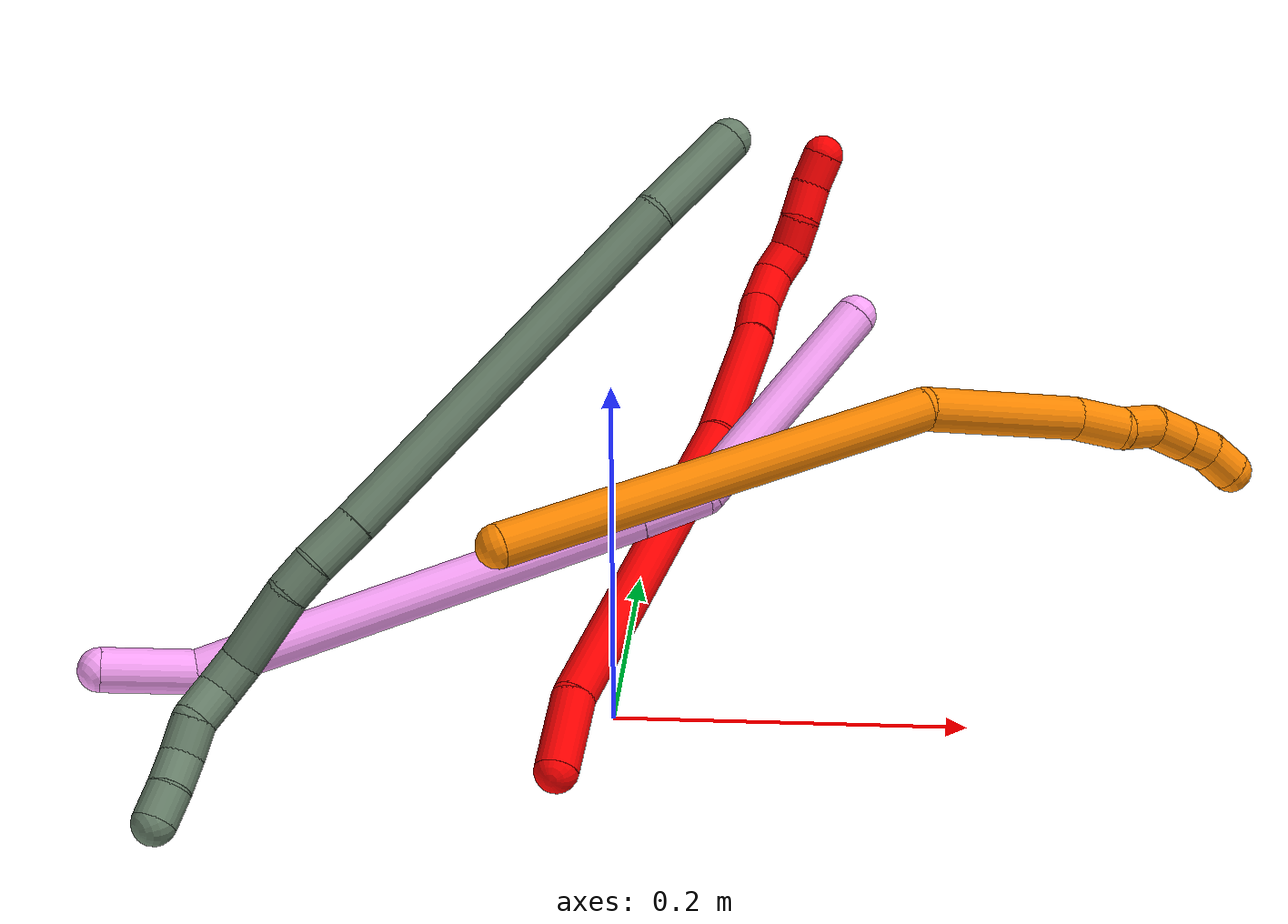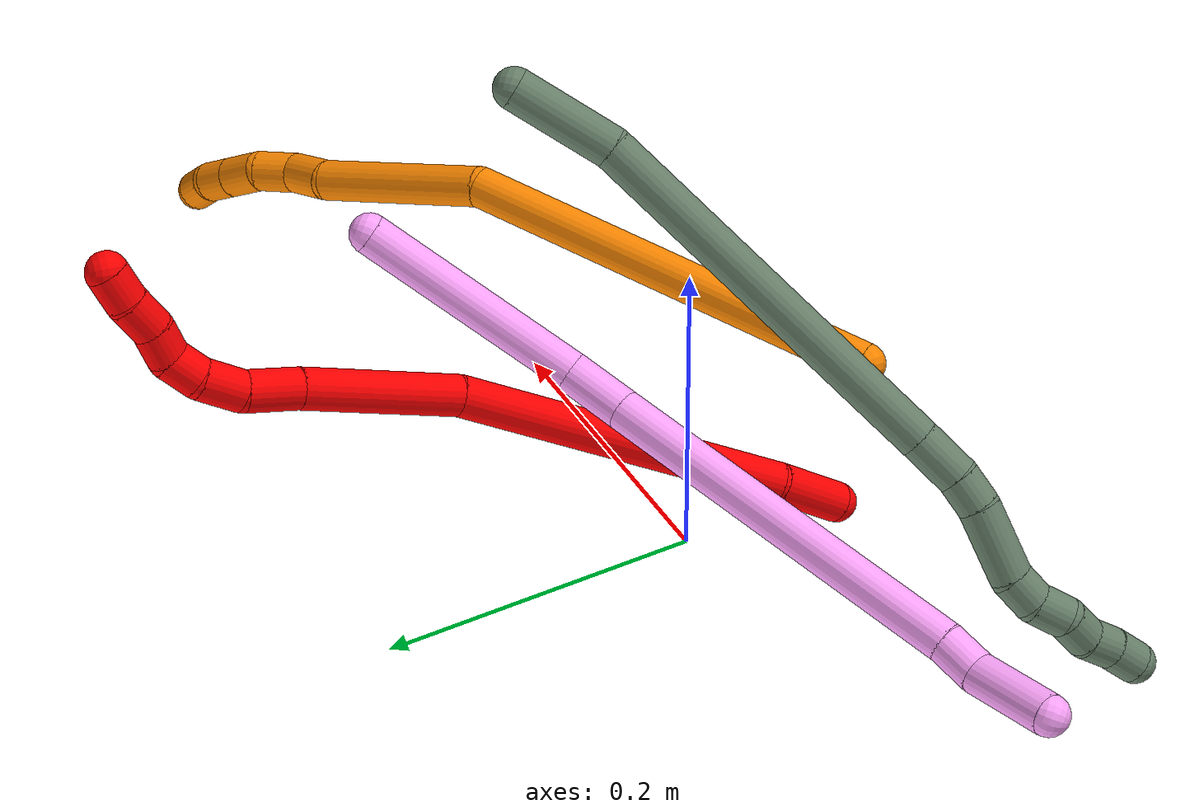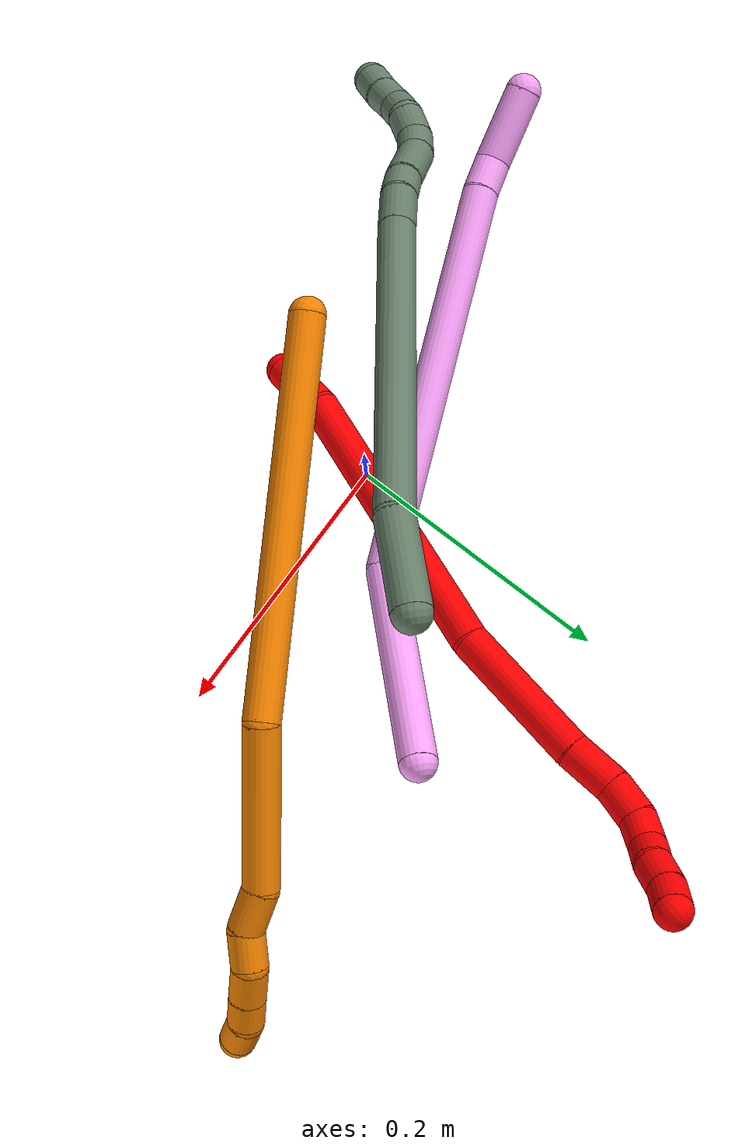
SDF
<sdf version="1.7">
 <world name="default">
  <model name="photoneo_s_sensor">
   <static>1</static>
   <pose>0 0 2 1.57079 1.57079 3.14159</pose>
   <link name="link">
    <inertial><mass>0.1</mass></inertial>
    <sensor name="sensor" type="depth">
     <update_rate>30</update_rate>
     <camera>
      <horizontal_fov>1.22</horizontal_fov>
      <image><width>1920</width><height>1200</height><format>B8G8R8</format></image>
      <clip><near>0.1</near><far>4</far></clip>
      <depth_camera><output>points</output></depth_camera>
     </camera>
     <plugin name="camera_plugin" filename="libgazebo_ros_depth_camera.so">
      <baseline>0.2</baseline>
      <alwaysOn>1</alwaysOn>
      <updateRate>0.0</updateRate>
      <cameraName>camera_ir</cameraName>
      <imageTopicName>/camera/color/image_raw</imageTopicName>
      <cameraInfoTopicName>/camera/color/camera_info</cameraInfoTopicName>
      <depthImageTopicName>/camera/depth/image_raw</depthImageTopicName>
      <depthImageCameraInfoTopicName>/camera/depth/camera_info</depthImageCameraInfoTopicName>
      <pointCloudTopicName>/camera/depth/points</pointCloudTopicName>
      <frameName>fr_optical</frameName>
      <pointCloudCutoff>0.1</pointCloudCutoff>
      <pointCloudCutoffMax>2.0</pointCloudCutoffMax>
      <distortionK1>0</distortionK1>
      <distortionK2>0</distortionK2>
      <distortionK3>0</distortionK3>
      <distortionT1>0</distortionT1>
      <distortionT2>0</distortionT2>
      <CxPrime>0</CxPrime>
      <Cx>0</Cx>
      <Cy>0</Cy>
      <focalLength>0</focalLength>
      <hackBaseline>0</hackBaseline>
     </plugin>
    </sensor>
   </link>
  </model>
  <model name="bin">
   <static>1</static>
   <link name="bottom">
    <collision name="collision-bottom">
     <pose>0 0 -0.01 0 -0 0</pose>
     <geometry><box><size>0.8 0.6 0.02</size></box></geometry>
     <surface>
      <friction><ode><mu>100</mu><mu2>100</mu2></ode></friction>
      <contact><collide_bitmask>65535</collide_bitmask></contact>
     </surface>
    </collision>
   </link>
   <link name="west_wall">
    <collision name="collision-west_wall">
     <pose>-0.41 0 0.1 0 -0 0</pose>
     <geometry><box><size>0.02 0.6 0.2</size></box></geometry>
     <surface>
      <friction><ode><mu>100</mu><mu2>100</mu2></ode></friction>
      <contact><collide_bitmask>65535</collide_bitmask></contact>
     </surface>
    </collision>
   </link>
   <link name="east_wall">
    <collision name="collision-east_wall">
     <pose>0.41 0 0.1 0 -0 0</pose>
     <geometry><box><size>0.02 0.6 0.2</size></box></geometry>
     <surface>
      <friction><ode><mu>100</mu><mu2>100</mu2></ode></friction>
      <contact><collide_bitmask>65535</collide_bitmask></contact>
     </surface>
    </collision>
   </link>
   <link name="south_wall">
    <collision name="collision-south_wall">
     <pose>0 -0.31 0.1 0 -0 0</pose>
     <geometry><box><size>0.8 0.02 0.2</size></box></geometry>
     <surface>
      <friction><ode><mu>100</mu><mu2>100</mu2></ode></friction>
      <contact><collide_bitmask>65535</collide_bitmask></contact>
     </surface>
    </collision>
   </link>
   <link name="north_wall">
    <collision name="collision-north_wall">
     <pose>0 0.31 0.1 0 -0 0</pose>
     <geometry><box><size>0.8 0.02 0.2</size></box></geometry>
     <surface>
      <friction><ode><mu>100</mu><mu2>100</mu2></ode></friction>
      <contact><collide_bitmask>65535</collide_bitmask></contact>
     </surface>
    </collision>
   </link>
  </model>
  <model name="2">
   <static>0</static>
   <link name="2">
    <collision name="collision-cylinder-e_1_1_4">
     <pose>0.00917 0.008832 0.019747 -0.420569 0.400967 -0.086693</pose>
     <geometry><cylinder><radius>0.0125</radius><length>0.04699</length></cylinder></geometry>
     <surface>
      <friction><ode><mu>1.16</mu><mu2>1.16</mu2><slip1>0</slip1><slip2>0</slip2></ode></friction>
      <contact><ode><kp>1e+06</kp><kd>1</kd><max_vel>0</max_vel><min_depth>0.001</min_depth></ode></contact>
     </surface>
    </collision>
    <visual name="visual-cylinder-e_1_1_4">
     <pose>0.00917 0.008832 0.019747 -0.420569 0.400967 -0.086693</pose>
     <geometry><cylinder><radius>0.0125</radius><length>0.04699</length></cylinder></geometry>
     <material><ambient>1 0 0 1</ambient></material>
    </visual>
    <collision name="collision-cylinder-e_2_4_5">
     <pose>0.034302 0.060123 0.133983 -0.422314 0.152873 -0.03283</pose>
     <geometry><cylinder><radius>0.0125</radius><length>0.209627</length></cylinder></geometry>
     <surface>
      <friction><ode><mu>1.16</mu><mu2>1.16</mu2><slip1>0</slip1><slip2>0</slip2></ode></friction>
      <contact><ode><kp>1e+06</kp><kd>1</kd><max_vel>0</max_vel><min_depth>0.001</min_depth></ode></contact>
     </surface>
    </collision>
    <visual name="visual-cylinder-e_2_4_5">
     <pose>0.034302 0.060123 0.133983 -0.422314 0.152873 -0.03283</pose>
     <geometry><cylinder><radius>0.0125</radius><length>0.209627</length></cylinder></geometry>
     <material><ambient>1 0 0 1</ambient></material>
    </visual>
    <collision name="collision-cylinder-e_3_5_6">
     <pose>0.059384 0.11224 0.275722 -0.20164 0.186945 -0.018967</pose>
     <geometry><cylinder><radius>0.0125</radius><length>0.098161</length></cylinder></geometry>
     <surface>
      <friction><ode><mu>1.16</mu><mu2>1.16</mu2><slip1>0</slip1><slip2>0</slip2></ode></friction>
      <contact><ode><kp>1e+06</kp><kd>1</kd><max_vel>0</max_vel><min_depth>0.001</min_depth></ode></contact>
     </surface>
    </collision>
    <visual name="visual-cylinder-e_3_5_6">
     <pose>0.059384 0.11224 0.275722 -0.20164 0.186945 -0.018967</pose>
     <geometry><cylinder><radius>0.0125</radius><length>0.098161</length></cylinder></geometry>
     <material><ambient>1 0 0 1</ambient></material>
    </visual>
    <collision name="collision-cylinder-e_4_6_7">
     <pose>0.07249 0.12352 0.339565 -0.097395 0.234536 -0.011483</pose>
     <geometry><cylinder><radius>0.0125</radius><length>0.034286</length></cylinder></geometry>
     <surface>
      <friction><ode><mu>1.16</mu><mu2>1.16</mu2><slip1>0</slip1><slip2>0</slip2></ode></friction>
      <contact><ode><kp>1e+06</kp><kd>1</kd><max_vel>0</max_vel><min_depth>0.001</min_depth></ode></contact>
     </surface>
    </collision>
    <visual name="visual-cylinder-e_4_6_7">
     <pose>0.07249 0.12352 0.339565 -0.097395 0.234536 -0.011483</pose>
     <geometry><cylinder><radius>0.0125</radius><length>0.034286</length></cylinder></geometry>
     <material><ambient>1 0 0 1</ambient></material>
    </visual>
    <collision name="collision-cylinder-e_5_7_8">
     <pose>0.079843 0.130614 0.367891 -0.436484 0.254626 -0.056761</pose>
     <geometry><cylinder><radius>0.0125</radius><length>0.026752</length></cylinder></geometry>
     <surface>
      <friction><ode><mu>1.16</mu><mu2>1.16</mu2><slip1>0</slip1><slip2>0</slip2></ode></friction>
      <contact><ode><kp>1e+06</kp><kd>1</kd><max_vel>0</max_vel><min_depth>0.001</min_depth></ode></contact>
     </surface>
    </collision>
    <visual name="visual-cylinder-e_5_7_8">
     <pose>0.079843 0.130614 0.367891 -0.436484 0.254626 -0.056761</pose>
     <geometry><cylinder><radius>0.0125</radius><length>0.026752</length></cylinder></geometry>
     <material><ambient>1 0 0 1</ambient></material>
    </visual>
    <collision name="collision-cylinder-e_6_8_9">
     <pose>0.084895 0.143055 0.387125 -0.748469 0.162814 -0.064064</pose>
     <geometry><cylinder><radius>0.0125</radius><length>0.020755</length></cylinder></geometry>
     <surface>
      <friction><ode><mu>1.16</mu><mu2>1.16</mu2><slip1>0</slip1><slip2>0</slip2></ode></friction>
      <contact><ode><kp>1e+06</kp><kd>1</kd><max_vel>0</max_vel><min_depth>0.001</min_depth></ode></contact>
     </surface>
    </collision>
    <visual name="visual-cylinder-e_6_8_9">
     <pose>0.084895 0.143055 0.387125 -0.748469 0.162814 -0.064064</pose>
     <geometry><cylinder><radius>0.0125</radius><length>0.020755</length></cylinder></geometry>
     <material><ambient>1 0 0 1</ambient></material>
    </visual>
    <collision name="collision-cylinder-e_7_9_10">
     <pose>0.091236 0.1584 0.398029 -1.18517 0.475895 -0.323751</pose>
     <geometry><cylinder><radius>0.0125</radius><length>0.020339</length></cylinder></geometry>
     <surface>
      <friction><ode><mu>1.16</mu><mu2>1.16</mu2><slip1>0</slip1><slip2>0</slip2></ode></friction>
      <contact><ode><kp>1e+06</kp><kd>1</kd><max_vel>0</max_vel><min_depth>0.001</min_depth></ode></contact>
     </surface>
    </collision>
    <visual name="visual-cylinder-e_7_9_10">
     <pose>0.091236 0.1584 0.398029 -1.18517 0.475895 -0.323751</pose>
     <geometry><cylinder><radius>0.0125</radius><length>0.020339</length></cylinder></geometry>
     <material><ambient>1 0 0 1</ambient></material>
    </visual>
    <collision name="collision-cylinder-e_8_10_11">
     <pose>0.101037 0.174613 0.40769 -0.89672 0.473625 -0.231152</pose>
     <geometry><cylinder><radius>0.0125</radius><length>0.022545</length></cylinder></geometry>
     <surface>
      <friction><ode><mu>1.16</mu><mu2>1.16</mu2><slip1>0</slip1><slip2>0</slip2></ode></friction>
      <contact><ode><kp>1e+06</kp><kd>1</kd><max_vel>0</max_vel><min_depth>0.001</min_depth></ode></contact>
     </surface>
    </collision>
    <visual name="visual-cylinder-e_8_10_11">
     <pose>0.101037 0.174613 0.40769 -0.89672 0.473625 -0.231152</pose>
     <geometry><cylinder><radius>0.0125</radius><length>0.022545</length></cylinder></geometry>
     <material><ambient>1 0 0 1</ambient></material>
    </visual>
    <collision name="collision-cylinder-e_9_11_2">
     <pose>0.110157 0.190908 0.418213 -1.10413 0.397722 -0.246996</pose>
     <geometry><cylinder><radius>0.0125</radius><length>0.020543</length></cylinder></geometry>
     <surface>
      <friction><ode><mu>1.16</mu><mu2>1.16</mu2><slip1>0</slip1><slip2>0</slip2></ode></friction>
      <contact><ode><kp>1e+06</kp><kd>1</kd><max_vel>0</max_vel><min_depth>0.001</min_depth></ode></contact>
     </surface>
    </collision>
    <visual name="visual-cylinder-e_9_11_2">
     <pose>0.110157 0.190908 0.418213 -1.10413 0.397722 -0.246996</pose>
     <geometry><cylinder><radius>0.0125</radius><length>0.020543</length></cylinder></geometry>
     <material><ambient>1 0 0 1</ambient></material>
    </visual>
    <collision name="collision-sphere-2">
     <pose>0.114135 0.199365 0.422473 0 -0 0</pose>
     <geometry><sphere><radius>0.0125</radius></sphere></geometry>
     <surface>
      <friction><ode><mu>1.16</mu><mu2>1.16</mu2><slip1>0</slip1><slip2>0</slip2></ode></friction>
      <contact><ode><kp>1e+06</kp><kd>1</kd><max_vel>0</max_vel><min_depth>0.001</min_depth></ode></contact>
     </surface>
    </collision>
    <visual name="visual-sphere-2">
     <pose>0.114135 0.199365 0.422473 0 -0 0</pose>
     <geometry><sphere><radius>0.0125</radius></sphere></geometry>
     <material><ambient>1 0 0 1</ambient></material>
    </visual>
    <collision name="collision-sphere-11">
     <pose>0.106178 0.182451 0.413952 0 -0 0</pose>
     <geometry><sphere><radius>0.0125</radius></sphere></geometry>
     <surface>
      <friction><ode><mu>1.16</mu><mu2>1.16</mu2><slip1>0</slip1><slip2>0</slip2></ode></friction>
      <contact><ode><kp>1e+06</kp><kd>1</kd><max_vel>0</max_vel><min_depth>0.001</min_depth></ode></contact>
     </surface>
    </collision>
    <visual name="visual-sphere-11">
     <pose>0.106178 0.182451 0.413952 0 -0 0</pose>
     <geometry><sphere><radius>0.0125</radius></sphere></geometry>
     <material><ambient>1 0 0 1</ambient></material>
    </visual>
    <collision name="collision-sphere-10">
     <pose>0.095895 0.166775 0.401429 0 -0 0</pose>
     <geometry><sphere><radius>0.0125</radius></sphere></geometry>
     <surface>
      <friction><ode><mu>1.16</mu><mu2>1.16</mu2><slip1>0</slip1><slip2>0</slip2></ode></friction>
      <contact><ode><kp>1e+06</kp><kd>1</kd><max_vel>0</max_vel><min_depth>0.001</min_depth></ode></contact>
     </surface>
    </collision>
    <visual name="visual-sphere-10">
     <pose>0.095895 0.166775 0.401429 0 -0 0</pose>
     <geometry><sphere><radius>0.0125</radius></sphere></geometry>
     <material><ambient>1 0 0 1</ambient></material>
    </visual>
    <collision name="collision-sphere-9">
     <pose>0.086577 0.150024 0.394628 0 -0 0</pose>
     <geometry><sphere><radius>0.0125</radius></sphere></geometry>
     <surface>
      <friction><ode><mu>1.16</mu><mu2>1.16</mu2><slip1>0</slip1><slip2>0</slip2></ode></friction>
      <contact><ode><kp>1e+06</kp><kd>1</kd><max_vel>0</max_vel><min_depth>0.001</min_depth></ode></contact>
     </surface>
    </collision>
    <visual name="visual-sphere-9">
     <pose>0.086577 0.150024 0.394628 0 -0 0</pose>
     <geometry><sphere><radius>0.0125</radius></sphere></geometry>
     <material><ambient>1 0 0 1</ambient></material>
    </visual>
    <collision name="collision-sphere-4">
     <pose>0.018341 0.017664 0.039493 0 -0 0</pose>
     <geometry><sphere><radius>0.0125</radius></sphere></geometry>
     <surface>
      <friction><ode><mu>1.16</mu><mu2>1.16</mu2><slip1>0</slip1><slip2>0</slip2></ode></friction>
      <contact><ode><kp>1e+06</kp><kd>1</kd><max_vel>0</max_vel><min_depth>0.001</min_depth></ode></contact>
     </surface>
    </collision>
    <visual name="visual-sphere-4">
     <pose>0.018341 0.017664 0.039493 0 -0 0</pose>
     <geometry><sphere><radius>0.0125</radius></sphere></geometry>
     <material><ambient>1 0 0 1</ambient></material>
    </visual>
    <collision name="collision-sphere-1">
     <geometry><sphere><radius>0.0125</radius></sphere></geometry>
     <surface>
      <friction><ode><mu>1.16</mu><mu2>1.16</mu2><slip1>0</slip1><slip2>0</slip2></ode></friction>
      <contact><ode><kp>1e+06</kp><kd>1</kd><max_vel>0</max_vel><min_depth>0.001</min_depth></ode></contact>
     </surface>
    </collision>
    <visual name="visual-sphere-1">
     <geometry><sphere><radius>0.0125</radius></sphere></geometry>
     <material><ambient>1 0 0 1</ambient></material>
    </visual>
    <collision name="collision-sphere-8">
     <pose>0.083213 0.136086 0.379621 0 -0 0</pose>
     <geometry><sphere><radius>0.0125</radius></sphere></geometry>
     <surface>
      <friction><ode><mu>1.16</mu><mu2>1.16</mu2><slip1>0</slip1><slip2>0</slip2></ode></friction>
      <contact><ode><kp>1e+06</kp><kd>1</kd><max_vel>0</max_vel><min_depth>0.001</min_depth></ode></contact>
     </surface>
    </collision>
    <visual name="visual-sphere-8">
     <pose>0.083213 0.136086 0.379621 0 -0 0</pose>
     <geometry><sphere><radius>0.0125</radius></sphere></geometry>
     <material><ambient>1 0 0 1</ambient></material>
    </visual>
    <collision name="collision-sphere-5">
     <pose>0.050262 0.102582 0.228473 0 -0 0</pose>
     <geometry><sphere><radius>0.0125</radius></sphere></geometry>
     <surface>
      <friction><ode><mu>1.16</mu><mu2>1.16</mu2><slip1>0</slip1><slip2>0</slip2></ode></friction>
      <contact><ode><kp>1e+06</kp><kd>1</kd><max_vel>0</max_vel><min_depth>0.001</min_depth></ode></contact>
     </surface>
    </collision>
    <visual name="visual-sphere-5">
     <pose>0.050262 0.102582 0.228473 0 -0 0</pose>
     <geometry><sphere><radius>0.0125</radius></sphere></geometry>
     <material><ambient>1 0 0 1</ambient></material>
    </visual>
    <collision name="collision-sphere-6">
     <pose>0.068506 0.121899 0.32297 0 -0 0</pose>
     <geometry><sphere><radius>0.0125</radius></sphere></geometry>
     <surface>
      <friction><ode><mu>1.16</mu><mu2>1.16</mu2><slip1>0</slip1><slip2>0</slip2></ode></friction>
      <contact><ode><kp>1e+06</kp><kd>1</kd><max_vel>0</max_vel><min_depth>0.001</min_depth></ode></contact>
     </surface>
    </collision>
    <visual name="visual-sphere-6">
     <pose>0.068506 0.121899 0.32297 0 -0 0</pose>
     <geometry><sphere><radius>0.0125</radius></sphere></geometry>
     <material><ambient>1 0 0 1</ambient></material>
    </visual>
    <collision name="collision-sphere-7">
     <pose>0.076474 0.125142 0.35616 0 -0 0</pose>
     <geometry><sphere><radius>0.0125</radius></sphere></geometry>
     <surface>
      <friction><ode><mu>1.16</mu><mu2>1.16</mu2><slip1>0</slip1><slip2>0</slip2></ode></friction>
      <contact><ode><kp>1e+06</kp><kd>1</kd><max_vel>0</max_vel><min_depth>0.001</min_depth></ode></contact>
     </surface>
    </collision>
    <visual name="visual-sphere-7">
     <pose>0.076474 0.125142 0.35616 0 -0 0</pose>
     <geometry><sphere><radius>0.0125</radius></sphere></geometry>
     <material><ambient>1 0 0 1</ambient></material>
    </visual>
    <inertial>
     <pose>0.052461 0.091629 0.222954 0 -0 0</pose>
     <mass>0.5</mass>
     <inertia>
      <ixx>0.00085</ixx>
      <ixy>0</ixy>
      <ixz>0</ixz>
      <iyy>0.000797</iyy>
      <iyz>0</iyz>
      <izz>-0.00045</izz>
     </inertia>
    </inertial>
   </link>
   <pose>-0.023703 -0.09172 0.011394 1.53398 -0.783834 2.99493</pose>
  </model>
  <model name="4">
   <static>0</static>
   <link name="4">
    <collision name="collision-cylinder-e_1_1_4">
     <pose>-0.002828 0.019005 -0.069329 -2.87404 -0.039313 0.2901</pose>
     <geometry><cylinder><radius>0.0125</radius><length>0.143884</length></cylinder></geometry>
     <surface>
      <friction><ode><mu>1.16</mu><mu2>1.16</mu2><slip1>0</slip1><slip2>0</slip2></ode></friction>
      <contact><ode><kp>1e+06</kp><kd>1</kd><max_vel>0</max_vel><min_depth>0.001</min_depth></ode></contact>
     </surface>
    </collision>
    <visual name="visual-cylinder-e_1_1_4">
     <pose>-0.002828 0.019005 -0.069329 -2.87404 -0.039313 0.2901</pose>
     <geometry><cylinder><radius>0.0125</radius><length>0.143884</length></cylinder></geometry>
     <material><ambient>1 0.65098 0.996078 1</ambient></material>
    </visual>
    <collision name="collision-cylinder-e_2_4_5">
     <pose>-0.01429 0.037079 -0.156948 3.09079 -0.440587 -2.91563</pose>
     <geometry><cylinder><radius>0.0125</radius><length>0.040496</length></cylinder></geometry>
     <surface>
      <friction><ode><mu>1.16</mu><mu2>1.16</mu2><slip1>0</slip1><slip2>0</slip2></ode></friction>
      <contact><ode><kp>1e+06</kp><kd>1</kd><max_vel>0</max_vel><min_depth>0.001</min_depth></ode></contact>
     </surface>
    </collision>
    <visual name="visual-cylinder-e_2_4_5">
     <pose>-0.01429 0.037079 -0.156948 3.09079 -0.440587 -2.91563</pose>
     <geometry><cylinder><radius>0.0125</radius><length>0.040496</length></cylinder></geometry>
     <material><ambient>1 0.65098 0.996078 1</ambient></material>
    </visual>
    <collision name="collision-cylinder-e_3_5_6">
     <pose>-0.074509 0.028651 -0.281734 3.0713 -0.450098 -2.83677</pose>
     <geometry><cylinder><radius>0.0125</radius><length>0.237135</length></cylinder></geometry>
     <surface>
      <friction><ode><mu>1.16</mu><mu2>1.16</mu2><slip1>0</slip1><slip2>0</slip2></ode></friction>
      <contact><ode><kp>1e+06</kp><kd>1</kd><max_vel>0</max_vel><min_depth>0.001</min_depth></ode></contact>
     </surface>
    </collision>
    <visual name="visual-cylinder-e_3_5_6">
     <pose>-0.074509 0.028651 -0.281734 3.0713 -0.450098 -2.83677</pose>
     <geometry><cylinder><radius>0.0125</radius><length>0.237135</length></cylinder></geometry>
     <material><ambient>1 0.65098 0.996078 1</ambient></material>
    </visual>
    <collision name="collision-cylinder-e_4_6_7">
     <pose>-0.132764 0.021364 -0.39899 -3.1219 -0.554935 3.07246</pose>
     <geometry><cylinder><radius>0.0125</radius><length>0.025327</length></cylinder></geometry>
     <surface>
      <friction><ode><mu>1.16</mu><mu2>1.16</mu2><slip1>0</slip1><slip2>0</slip2></ode></friction>
      <contact><ode><kp>1e+06</kp><kd>1</kd><max_vel>0</max_vel><min_depth>0.001</min_depth></ode></contact>
     </surface>
    </collision>
    <visual name="visual-cylinder-e_4_6_7">
     <pose>-0.132764 0.021364 -0.39899 -3.1219 -0.554935 3.07246</pose>
     <geometry><cylinder><radius>0.0125</radius><length>0.025327</length></cylinder></geometry>
     <material><ambient>1 0.65098 0.996078 1</ambient></material>
    </visual>
    <collision name="collision-cylinder-e_5_7_2">
     <pose>-0.15488 0.012331 -0.429308 2.70002 -0.620022 -1.91928</pose>
     <geometry><cylinder><radius>0.0125</radius><length>0.053158</length></cylinder></geometry>
     <surface>
      <friction><ode><mu>1.16</mu><mu2>1.16</mu2><slip1>0</slip1><slip2>0</slip2></ode></friction>
      <contact><ode><kp>1e+06</kp><kd>1</kd><max_vel>0</max_vel><min_depth>0.001</min_depth></ode></contact>
     </surface>
    </collision>
    <visual name="visual-cylinder-e_5_7_2">
     <pose>-0.15488 0.012331 -0.429308 2.70002 -0.620022 -1.91928</pose>
     <geometry><cylinder><radius>0.0125</radius><length>0.053158</length></cylinder></geometry>
     <material><ambient>1 0.65098 0.996078 1</ambient></material>
    </visual>
    <collision name="collision-sphere-2">
     <pose>-0.170324 0.003087 -0.448865 0 -0 0</pose>
     <geometry><sphere><radius>0.0125</radius></sphere></geometry>
     <surface>
      <friction><ode><mu>1.16</mu><mu2>1.16</mu2><slip1>0</slip1><slip2>0</slip2></ode></friction>
      <contact><ode><kp>1e+06</kp><kd>1</kd><max_vel>0</max_vel><min_depth>0.001</min_depth></ode></contact>
     </surface>
    </collision>
    <visual name="visual-sphere-2">
     <pose>-0.170324 0.003087 -0.448865 0 -0 0</pose>
     <geometry><sphere><radius>0.0125</radius></sphere></geometry>
     <material><ambient>1 0.65098 0.996078 1</ambient></material>
    </visual>
    <collision name="collision-sphere-7">
     <pose>-0.139436 0.021576 -0.409751 0 -0 0</pose>
     <geometry><sphere><radius>0.0125</radius></sphere></geometry>
     <surface>
      <friction><ode><mu>1.16</mu><mu2>1.16</mu2><slip1>0</slip1><slip2>0</slip2></ode></friction>
      <contact><ode><kp>1e+06</kp><kd>1</kd><max_vel>0</max_vel><min_depth>0.001</min_depth></ode></contact>
     </surface>
    </collision>
    <visual name="visual-sphere-7">
     <pose>-0.139436 0.021576 -0.409751 0 -0 0</pose>
     <geometry><sphere><radius>0.0125</radius></sphere></geometry>
     <material><ambient>1 0.65098 0.996078 1</ambient></material>
    </visual>
    <collision name="collision-sphere-6">
     <pose>-0.126092 0.021152 -0.388229 0 -0 0</pose>
     <geometry><sphere><radius>0.0125</radius></sphere></geometry>
     <surface>
      <friction><ode><mu>1.16</mu><mu2>1.16</mu2><slip1>0</slip1><slip2>0</slip2></ode></friction>
      <contact><ode><kp>1e+06</kp><kd>1</kd><max_vel>0</max_vel><min_depth>0.001</min_depth></ode></contact>
     </surface>
    </collision>
    <visual name="visual-sphere-6">
     <pose>-0.126092 0.021152 -0.388229 0 -0 0</pose>
     <geometry><sphere><radius>0.0125</radius></sphere></geometry>
     <material><ambient>1 0.65098 0.996078 1</ambient></material>
    </visual>
    <collision name="collision-sphere-5">
     <pose>-0.022925 0.036149 -0.175239 0 -0 0</pose>
     <geometry><sphere><radius>0.0125</radius></sphere></geometry>
     <surface>
      <friction><ode><mu>1.16</mu><mu2>1.16</mu2><slip1>0</slip1><slip2>0</slip2></ode></friction>
      <contact><ode><kp>1e+06</kp><kd>1</kd><max_vel>0</max_vel><min_depth>0.001</min_depth></ode></contact>
     </surface>
    </collision>
    <visual name="visual-sphere-5">
     <pose>-0.022925 0.036149 -0.175239 0 -0 0</pose>
     <geometry><sphere><radius>0.0125</radius></sphere></geometry>
     <material><ambient>1 0.65098 0.996078 1</ambient></material>
    </visual>
    <collision name="collision-sphere-1">
     <geometry><sphere><radius>0.0125</radius></sphere></geometry>
     <surface>
      <friction><ode><mu>1.16</mu><mu2>1.16</mu2><slip1>0</slip1><slip2>0</slip2></ode></friction>
      <contact><ode><kp>1e+06</kp><kd>1</kd><max_vel>0</max_vel><min_depth>0.001</min_depth></ode></contact>
     </surface>
    </collision>
    <visual name="visual-sphere-1">
     <geometry><sphere><radius>0.0125</radius></sphere></geometry>
     <material><ambient>1 0.65098 0.996078 1</ambient></material>
    </visual>
    <collision name="collision-sphere-4">
     <pose>-0.005655 0.03801 -0.138657 0 -0 0</pose>
     <geometry><sphere><radius>0.0125</radius></sphere></geometry>
     <surface>
      <friction><ode><mu>1.16</mu><mu2>1.16</mu2><slip1>0</slip1><slip2>0</slip2></ode></friction>
      <contact><ode><kp>1e+06</kp><kd>1</kd><max_vel>0</max_vel><min_depth>0.001</min_depth></ode></contact>
     </surface>
    </collision>
    <visual name="visual-sphere-4">
     <pose>-0.005655 0.03801 -0.138657 0 -0 0</pose>
     <geometry><sphere><radius>0.0125</radius></sphere></geometry>
     <material><ambient>1 0.65098 0.996078 1</ambient></material>
    </visual>
    <inertial>
     <pose>-0.0605 0.024453 -0.232133 0 -0 0</pose>
     <mass>0.5</mass>
     <inertia>
      <ixx>-0.000988</ixx>
      <ixy>0</ixy>
      <ixz>0</ixz>
      <iyy>0.000617</iyy>
      <iyz>0</iyz>
      <izz>0.000484</izz>
     </inertia>
    </inertial>
   </link>
   <pose>0.130813 0.139975 0.196393 -1.26127 -0.009225 -0.715176</pose>
  </model>
  <model name="17">
   <static>0</static>
   <link name="17">
    <collision name="collision-cylinder-e_1_1_4">
     <pose>-0.005919 -0.0108 0.029067 0.355734 -0.18861 -0.034003</pose>
     <geometry><cylinder><radius>0.0125</radius><length>0.063136</length></cylinder></geometry>
     <surface>
      <friction><ode><mu>1.16</mu><mu2>1.16</mu2><slip1>0</slip1><slip2>0</slip2></ode></friction>
      <contact><ode><kp>1e+06</kp><kd>1</kd><max_vel>0</max_vel><min_depth>0.001</min_depth></ode></contact>
     </surface>
    </collision>
    <visual name="visual-cylinder-e_1_1_4">
     <pose>-0.005919 -0.0108 0.029067 0.355734 -0.18861 -0.034003</pose>
     <geometry><cylinder><radius>0.0125</radius><length>0.063136</length></cylinder></geometry>
     <material><ambient>0.415686 0.509804 0.423529 1</ambient></material>
    </visual>
    <collision name="collision-cylinder-e_2_4_5">
     <pose>-0.056721 -0.067784 0.157913 0.433508 -0.387567 -0.086379</pose>
     <geometry><cylinder><radius>0.0125</radius><length>0.237516</length></cylinder></geometry>
     <surface>
      <friction><ode><mu>1.16</mu><mu2>1.16</mu2><slip1>0</slip1><slip2>0</slip2></ode></friction>
      <contact><ode><kp>1e+06</kp><kd>1</kd><max_vel>0</max_vel><min_depth>0.001</min_depth></ode></contact>
     </surface>
    </collision>
    <visual name="visual-cylinder-e_2_4_5">
     <pose>-0.056721 -0.067784 0.157913 0.433508 -0.387567 -0.086379</pose>
     <geometry><cylinder><radius>0.0125</radius><length>0.237516</length></cylinder></geometry>
     <material><ambient>0.415686 0.509804 0.423529 1</ambient></material>
    </visual>
    <collision name="collision-cylinder-e_3_5_6">
     <pose>-0.10785 -0.119536 0.27067 0.405182 -0.41643 -0.086742</pose>
     <geometry><cylinder><radius>0.0125</radius><length>0.030882</length></cylinder></geometry>
     <surface>
      <friction><ode><mu>1.16</mu><mu2>1.16</mu2><slip1>0</slip1><slip2>0</slip2></ode></friction>
      <contact><ode><kp>1e+06</kp><kd>1</kd><max_vel>0</max_vel><min_depth>0.001</min_depth></ode></contact>
     </surface>
    </collision>
    <visual name="visual-cylinder-e_3_5_6">
     <pose>-0.10785 -0.119536 0.27067 0.405182 -0.41643 -0.086742</pose>
     <geometry><cylinder><radius>0.0125</radius><length>0.030882</length></cylinder></geometry>
     <material><ambient>0.415686 0.509804 0.423529 1</ambient></material>
    </visual>
    <collision name="collision-cylinder-e_4_6_7">
     <pose>-0.119567 -0.129667 0.291173 0.545284 -0.556213 -0.159319</pose>
     <geometry><cylinder><radius>0.0125</radius><length>0.020727</length></cylinder></geometry>
     <surface>
      <friction><ode><mu>1.16</mu><mu2>1.16</mu2><slip1>0</slip1><slip2>0</slip2></ode></friction>
      <contact><ode><kp>1e+06</kp><kd>1</kd><max_vel>0</max_vel><min_depth>0.001</min_depth></ode></contact>
     </surface>
    </collision>
    <visual name="visual-cylinder-e_4_6_7">
     <pose>-0.119567 -0.129667 0.291173 0.545284 -0.556213 -0.159319</pose>
     <geometry><cylinder><radius>0.0125</radius><length>0.020727</length></cylinder></geometry>
     <material><ambient>0.415686 0.509804 0.423529 1</ambient></material>
    </visual>
    <collision name="collision-cylinder-e_5_7_8">
     <pose>-0.139101 -0.146327 0.312058 0.735756 -0.662614 -0.263623</pose>
     <geometry><cylinder><radius>0.0125</radius><length>0.045716</length></cylinder></geometry>
     <surface>
      <friction><ode><mu>1.16</mu><mu2>1.16</mu2><slip1>0</slip1><slip2>0</slip2></ode></friction>
      <contact><ode><kp>1e+06</kp><kd>1</kd><max_vel>0</max_vel><min_depth>0.001</min_depth></ode></contact>
     </surface>
    </collision>
    <visual name="visual-cylinder-e_5_7_8">
     <pose>-0.139101 -0.146327 0.312058 0.735756 -0.662614 -0.263623</pose>
     <geometry><cylinder><radius>0.0125</radius><length>0.045716</length></cylinder></geometry>
     <material><ambient>0.415686 0.509804 0.423529 1</ambient></material>
    </visual>
    <collision name="collision-cylinder-e_6_8_9">
     <pose>-0.157103 -0.163262 0.333318 0.549589 -0.402083 -0.114784</pose>
     <geometry><cylinder><radius>0.0125</radius><length>0.020137</length></cylinder></geometry>
     <surface>
      <friction><ode><mu>1.16</mu><mu2>1.16</mu2><slip1>0</slip1><slip2>0</slip2></ode></friction>
      <contact><ode><kp>1e+06</kp><kd>1</kd><max_vel>0</max_vel><min_depth>0.001</min_depth></ode></contact>
     </surface>
    </collision>
    <visual name="visual-cylinder-e_6_8_9">
     <pose>-0.157103 -0.163262 0.333318 0.549589 -0.402083 -0.114784</pose>
     <geometry><cylinder><radius>0.0125</radius><length>0.020137</length></cylinder></geometry>
     <material><ambient>0.415686 0.509804 0.423529 1</ambient></material>
    </visual>
    <collision name="collision-cylinder-e_7_9_10">
     <pose>-0.161712 -0.172607 0.350857 0.437347 -0.062758 -0.013951</pose>
     <geometry><cylinder><radius>0.0125</radius><length>0.021319</length></cylinder></geometry>
     <surface>
      <friction><ode><mu>1.16</mu><mu2>1.16</mu2><slip1>0</slip1><slip2>0</slip2></ode></friction>
      <contact><ode><kp>1e+06</kp><kd>1</kd><max_vel>0</max_vel><min_depth>0.001</min_depth></ode></contact>
     </surface>
    </collision>
    <visual name="visual-cylinder-e_7_9_10">
     <pose>-0.161712 -0.172607 0.350857 0.437347 -0.062758 -0.013951</pose>
     <geometry><cylinder><radius>0.0125</radius><length>0.021319</length></cylinder></geometry>
     <material><ambient>0.415686 0.509804 0.423529 1</ambient></material>
    </visual>
    <collision name="collision-cylinder-e_8_10_11">
     <pose>-0.164182 -0.184658 0.367241 0.841162 -0.176182 -0.078964</pose>
     <geometry><cylinder><radius>0.0125</radius><length>0.020562</length></cylinder></geometry>
     <surface>
      <friction><ode><mu>1.16</mu><mu2>1.16</mu2><slip1>0</slip1><slip2>0</slip2></ode></friction>
      <contact><ode><kp>1e+06</kp><kd>1</kd><max_vel>0</max_vel><min_depth>0.001</min_depth></ode></contact>
     </surface>
    </collision>
    <visual name="visual-cylinder-e_8_10_11">
     <pose>-0.164182 -0.184658 0.367241 0.841162 -0.176182 -0.078964</pose>
     <geometry><cylinder><radius>0.0125</radius><length>0.020562</length></cylinder></geometry>
     <material><ambient>0.415686 0.509804 0.423529 1</ambient></material>
    </visual>
    <collision name="collision-cylinder-e_9_11_12">
     <pose>-0.164944 -0.198515 0.381677 0.687366 0.104156 0.037306</pose>
     <geometry><cylinder><radius>0.0125</radius><length>0.020002</length></cylinder></geometry>
     <surface>
      <friction><ode><mu>1.16</mu><mu2>1.16</mu2><slip1>0</slip1><slip2>0</slip2></ode></friction>
      <contact><ode><kp>1e+06</kp><kd>1</kd><max_vel>0</max_vel><min_depth>0.001</min_depth></ode></contact>
     </surface>
    </collision>
    <visual name="visual-cylinder-e_9_11_12">
     <pose>-0.164944 -0.198515 0.381677 0.687366 0.104156 0.037306</pose>
     <geometry><cylinder><radius>0.0125</radius><length>0.020002</length></cylinder></geometry>
     <material><ambient>0.415686 0.509804 0.423529 1</ambient></material>
    </visual>
    <collision name="collision-cylinder-e_10_12_2">
     <pose>-0.164318 -0.211187 0.397071 0.6901 -0.041363 -0.014869</pose>
     <geometry><cylinder><radius>0.0125</radius><length>0.020001</length></cylinder></geometry>
     <surface>
      <friction><ode><mu>1.16</mu><mu2>1.16</mu2><slip1>0</slip1><slip2>0</slip2></ode></friction>
      <contact><ode><kp>1e+06</kp><kd>1</kd><max_vel>0</max_vel><min_depth>0.001</min_depth></ode></contact>
     </surface>
    </collision>
    <visual name="visual-cylinder-e_10_12_2">
     <pose>-0.164318 -0.211187 0.397071 0.6901 -0.041363 -0.014869</pose>
     <geometry><cylinder><radius>0.0125</radius><length>0.020001</length></cylinder></geometry>
     <material><ambient>0.415686 0.509804 0.423529 1</ambient></material>
    </visual>
    <collision name="collision-sphere-2">
     <pose>-0.164732 -0.217548 0.404776 0 -0 0</pose>
     <geometry><sphere><radius>0.0125</radius></sphere></geometry>
     <surface>
      <friction><ode><mu>1.16</mu><mu2>1.16</mu2><slip1>0</slip1><slip2>0</slip2></ode></friction>
      <contact><ode><kp>1e+06</kp><kd>1</kd><max_vel>0</max_vel><min_depth>0.001</min_depth></ode></contact>
     </surface>
    </collision>
    <visual name="visual-sphere-2">
     <pose>-0.164732 -0.217548 0.404776 0 -0 0</pose>
     <geometry><sphere><radius>0.0125</radius></sphere></geometry>
     <material><ambient>0.415686 0.509804 0.423529 1</ambient></material>
    </visual>
    <collision name="collision-sphere-12">
     <pose>-0.163905 -0.204826 0.389365 0 -0 0</pose>
     <geometry><sphere><radius>0.0125</radius></sphere></geometry>
     <surface>
      <friction><ode><mu>1.16</mu><mu2>1.16</mu2><slip1>0</slip1><slip2>0</slip2></ode></friction>
      <contact><ode><kp>1e+06</kp><kd>1</kd><max_vel>0</max_vel><min_depth>0.001</min_depth></ode></contact>
     </surface>
    </collision>
    <visual name="visual-sphere-12">
     <pose>-0.163905 -0.204826 0.389365 0 -0 0</pose>
     <geometry><sphere><radius>0.0125</radius></sphere></geometry>
     <material><ambient>0.415686 0.509804 0.423529 1</ambient></material>
    </visual>
    <collision name="collision-sphere-11">
     <pose>-0.165984 -0.192203 0.373989 0 -0 0</pose>
     <geometry><sphere><radius>0.0125</radius></sphere></geometry>
     <surface>
      <friction><ode><mu>1.16</mu><mu2>1.16</mu2><slip1>0</slip1><slip2>0</slip2></ode></friction>
      <contact><ode><kp>1e+06</kp><kd>1</kd><max_vel>0</max_vel><min_depth>0.001</min_depth></ode></contact>
     </surface>
    </collision>
    <visual name="visual-sphere-11">
     <pose>-0.165984 -0.192203 0.373989 0 -0 0</pose>
     <geometry><sphere><radius>0.0125</radius></sphere></geometry>
     <material><ambient>0.415686 0.509804 0.423529 1</ambient></material>
    </visual>
    <collision name="collision-sphere-10">
     <pose>-0.16238 -0.177113 0.360494 0 -0 0</pose>
     <geometry><sphere><radius>0.0125</radius></sphere></geometry>
     <surface>
      <friction><ode><mu>1.16</mu><mu2>1.16</mu2><slip1>0</slip1><slip2>0</slip2></ode></friction>
      <contact><ode><kp>1e+06</kp><kd>1</kd><max_vel>0</max_vel><min_depth>0.001</min_depth></ode></contact>
     </surface>
    </collision>
    <visual name="visual-sphere-10">
     <pose>-0.16238 -0.177113 0.360494 0 -0 0</pose>
     <geometry><sphere><radius>0.0125</radius></sphere></geometry>
     <material><ambient>0.415686 0.509804 0.423529 1</ambient></material>
    </visual>
    <collision name="collision-sphere-9">
     <pose>-0.161043 -0.168101 0.341219 0 -0 0</pose>
     <geometry><sphere><radius>0.0125</radius></sphere></geometry>
     <surface>
      <friction><ode><mu>1.16</mu><mu2>1.16</mu2><slip1>0</slip1><slip2>0</slip2></ode></friction>
      <contact><ode><kp>1e+06</kp><kd>1</kd><max_vel>0</max_vel><min_depth>0.001</min_depth></ode></contact>
     </surface>
    </collision>
    <visual name="visual-sphere-9">
     <pose>-0.161043 -0.168101 0.341219 0 -0 0</pose>
     <geometry><sphere><radius>0.0125</radius></sphere></geometry>
     <material><ambient>0.415686 0.509804 0.423529 1</ambient></material>
    </visual>
    <collision name="collision-sphere-4">
     <pose>-0.011838 -0.021599 0.058134 0 -0 0</pose>
     <geometry><sphere><radius>0.0125</radius></sphere></geometry>
     <surface>
      <friction><ode><mu>1.16</mu><mu2>1.16</mu2><slip1>0</slip1><slip2>0</slip2></ode></friction>
      <contact><ode><kp>1e+06</kp><kd>1</kd><max_vel>0</max_vel><min_depth>0.001</min_depth></ode></contact>
     </surface>
    </collision>
    <visual name="visual-sphere-4">
     <pose>-0.011838 -0.021599 0.058134 0 -0 0</pose>
     <geometry><sphere><radius>0.0125</radius></sphere></geometry>
     <material><ambient>0.415686 0.509804 0.423529 1</ambient></material>
    </visual>
    <collision name="collision-sphere-1">
     <geometry><sphere><radius>0.0125</radius></sphere></geometry>
     <surface>
      <friction><ode><mu>1.16</mu><mu2>1.16</mu2><slip1>0</slip1><slip2>0</slip2></ode></friction>
      <contact><ode><kp>1e+06</kp><kd>1</kd><max_vel>0</max_vel><min_depth>0.001</min_depth></ode></contact>
     </surface>
    </collision>
    <visual name="visual-sphere-1">
     <geometry><sphere><radius>0.0125</radius></sphere></geometry>
     <material><ambient>0.415686 0.509804 0.423529 1</ambient></material>
    </visual>
    <collision name="collision-sphere-8">
     <pose>-0.153163 -0.158422 0.325417 0 -0 0</pose>
     <geometry><sphere><radius>0.0125</radius></sphere></geometry>
     <surface>
      <friction><ode><mu>1.16</mu><mu2>1.16</mu2><slip1>0</slip1><slip2>0</slip2></ode></friction>
      <contact><ode><kp>1e+06</kp><kd>1</kd><max_vel>0</max_vel><min_depth>0.001</min_depth></ode></contact>
     </surface>
    </collision>
    <visual name="visual-sphere-8">
     <pose>-0.153163 -0.158422 0.325417 0 -0 0</pose>
     <geometry><sphere><radius>0.0125</radius></sphere></geometry>
     <material><ambient>0.415686 0.509804 0.423529 1</ambient></material>
    </visual>
    <collision name="collision-sphere-5">
     <pose>-0.101604 -0.11397 0.257692 0 -0 0</pose>
     <geometry><sphere><radius>0.0125</radius></sphere></geometry>
     <surface>
      <friction><ode><mu>1.16</mu><mu2>1.16</mu2><slip1>0</slip1><slip2>0</slip2></ode></friction>
      <contact><ode><kp>1e+06</kp><kd>1</kd><max_vel>0</max_vel><min_depth>0.001</min_depth></ode></contact>
     </surface>
    </collision>
    <visual name="visual-sphere-5">
     <pose>-0.101604 -0.11397 0.257692 0 -0 0</pose>
     <geometry><sphere><radius>0.0125</radius></sphere></geometry>
     <material><ambient>0.415686 0.509804 0.423529 1</ambient></material>
    </visual>
    <collision name="collision-sphere-6">
     <pose>-0.114095 -0.125102 0.283648 0 -0 0</pose>
     <geometry><sphere><radius>0.0125</radius></sphere></geometry>
     <surface>
      <friction><ode><mu>1.16</mu><mu2>1.16</mu2><slip1>0</slip1><slip2>0</slip2></ode></friction>
      <contact><ode><kp>1e+06</kp><kd>1</kd><max_vel>0</max_vel><min_depth>0.001</min_depth></ode></contact>
     </surface>
    </collision>
    <visual name="visual-sphere-6">
     <pose>-0.114095 -0.125102 0.283648 0 -0 0</pose>
     <geometry><sphere><radius>0.0125</radius></sphere></geometry>
     <material><ambient>0.415686 0.509804 0.423529 1</ambient></material>
    </visual>
    <collision name="collision-sphere-7">
     <pose>-0.125039 -0.134232 0.298698 0 -0 0</pose>
     <geometry><sphere><radius>0.0125</radius></sphere></geometry>
     <surface>
      <friction><ode><mu>1.16</mu><mu2>1.16</mu2><slip1>0</slip1><slip2>0</slip2></ode></friction>
      <contact><ode><kp>1e+06</kp><kd>1</kd><max_vel>0</max_vel><min_depth>0.001</min_depth></ode></contact>
     </surface>
    </collision>
    <visual name="visual-sphere-7">
     <pose>-0.125039 -0.134232 0.298698 0 -0 0</pose>
     <geometry><sphere><radius>0.0125</radius></sphere></geometry>
     <material><ambient>0.415686 0.509804 0.423529 1</ambient></material>
    </visual>
    <inertial>
     <pose>-0.085174 -0.097619 0.210644 0 -0 0</pose>
     <mass>0.5</mass>
     <inertia>
      <ixx>0.000975</ixx>
      <ixy>0</ixy>
      <ixz>0</ixz>
      <iyy>0.000964</iyy>
      <iyz>0</iyz>
      <izz>0.000928</izz>
     </inertia>
    </inertial>
   </link>
   <pose>0.059721 0.078815 0.318952 1.67888 -0.494134 -0.806721</pose>
  </model>
  <model name="19">
   <static>0</static>
   <link name="19">
    <collision name="collision-cylinder-e_1_1_4">
     <pose>0.016588 0.065218 0.114049 -0.519462 0.125599 -0.033417</pose>
     <geometry><cylinder><radius>0.0125</radius><length>0.264845</length></cylinder></geometry>
     <surface>
      <friction><ode><mu>1.16</mu><mu2>1.16</mu2><slip1>0</slip1><slip2>0</slip2></ode></friction>
      <contact><ode><kp>1e+06</kp><kd>1</kd><max_vel>0</max_vel><min_depth>0.001</min_depth></ode></contact>
     </surface>
    </collision>
    <visual name="visual-cylinder-e_1_1_4">
     <pose>0.016588 0.065218 0.114049 -0.519462 0.125599 -0.033417</pose>
     <geometry><cylinder><radius>0.0125</radius><length>0.264845</length></cylinder></geometry>
     <material><ambient>0.996078 0.537255 0 1</ambient></material>
    </visual>
    <collision name="collision-cylinder-e_2_4_5">
     <pose>0.055709 0.165826 0.264328 -0.773651 0.418601 -0.172621</pose>
     <geometry><cylinder><radius>0.0125</radius><length>0.110866</length></cylinder></geometry>
     <surface>
      <friction><ode><mu>1.16</mu><mu2>1.16</mu2><slip1>0</slip1><slip2>0</slip2></ode></friction>
      <contact><ode><kp>1e+06</kp><kd>1</kd><max_vel>0</max_vel><min_depth>0.001</min_depth></ode></contact>
     </surface>
    </collision>
    <visual name="visual-cylinder-e_2_4_5">
     <pose>0.055709 0.165826 0.264328 -0.773651 0.418601 -0.172621</pose>
     <geometry><cylinder><radius>0.0125</radius><length>0.110866</length></cylinder></geometry>
     <material><ambient>0.996078 0.537255 0 1</ambient></material>
    </visual>
    <collision name="collision-cylinder-e_3_5_6">
     <pose>0.087194 0.206894 0.312016 -0.460125 0.610797 -0.147407</pose>
     <geometry><cylinder><radius>0.0125</radius><length>0.031219</length></cylinder></geometry>
     <surface>
      <friction><ode><mu>1.16</mu><mu2>1.16</mu2><slip1>0</slip1><slip2>0</slip2></ode></friction>
      <contact><ode><kp>1e+06</kp><kd>1</kd><max_vel>0</max_vel><min_depth>0.001</min_depth></ode></contact>
     </surface>
    </collision>
    <visual name="visual-cylinder-e_3_5_6">
     <pose>0.087194 0.206894 0.312016 -0.460125 0.610797 -0.147407</pose>
     <geometry><cylinder><radius>0.0125</radius><length>0.031219</length></cylinder></geometry>
     <material><ambient>0.996078 0.537255 0 1</ambient></material>
    </visual>
    <collision name="collision-cylinder-e_4_6_7">
     <pose>0.099806 0.221547 0.331622 -0.833611 0.293191 -0.130562</pose>
     <geometry><cylinder><radius>0.0125</radius><length>0.025327</length></cylinder></geometry>
     <surface>
      <friction><ode><mu>1.16</mu><mu2>1.16</mu2><slip1>0</slip1><slip2>0</slip2></ode></friction>
      <contact><ode><kp>1e+06</kp><kd>1</kd><max_vel>0</max_vel><min_depth>0.001</min_depth></ode></contact>
     </surface>
    </collision>
    <visual name="visual-cylinder-e_4_6_7">
     <pose>0.099806 0.221547 0.331622 -0.833611 0.293191 -0.130562</pose>
     <geometry><cylinder><radius>0.0125</radius><length>0.025327</length></cylinder></geometry>
     <material><ambient>0.996078 0.537255 0 1</ambient></material>
    </visual>
    <collision name="collision-cylinder-e_5_7_8">
     <pose>0.11159 0.237907 0.346303 -0.846547 0.689199 -0.320616</pose>
     <geometry><cylinder><radius>0.0125</radius><length>0.02555</length></cylinder></geometry>
     <surface>
      <friction><ode><mu>1.16</mu><mu2>1.16</mu2><slip1>0</slip1><slip2>0</slip2></ode></friction>
      <contact><ode><kp>1e+06</kp><kd>1</kd><max_vel>0</max_vel><min_depth>0.001</min_depth></ode></contact>
     </surface>
    </collision>
    <visual name="visual-cylinder-e_5_7_8">
     <pose>0.11159 0.237907 0.346303 -0.846547 0.689199 -0.320616</pose>
     <geometry><cylinder><radius>0.0125</radius><length>0.02555</length></cylinder></geometry>
     <material><ambient>0.996078 0.537255 0 1</ambient></material>
    </visual>
    <collision name="collision-cylinder-e_6_8_9">
     <pose>0.126235 0.251395 0.358157 -0.853736 0.678041 -0.318073</pose>
     <geometry><cylinder><radius>0.0125</radius><length>0.020793</length></cylinder></geometry>
     <surface>
      <friction><ode><mu>1.16</mu><mu2>1.16</mu2><slip1>0</slip1><slip2>0</slip2></ode></friction>
      <contact><ode><kp>1e+06</kp><kd>1</kd><max_vel>0</max_vel><min_depth>0.001</min_depth></ode></contact>
     </surface>
    </collision>
    <visual name="visual-cylinder-e_6_8_9">
     <pose>0.126235 0.251395 0.358157 -0.853736 0.678041 -0.318073</pose>
     <geometry><cylinder><radius>0.0125</radius><length>0.020793</length></cylinder></geometry>
     <material><ambient>0.996078 0.537255 0 1</ambient></material>
    </visual>
    <collision name="collision-cylinder-e_7_9_2">
     <pose>0.141848 0.261357 0.367596 -0.75294 1.01521 -0.432884</pose>
     <geometry><cylinder><radius>0.0125</radius><length>0.021402</length></cylinder></geometry>
     <surface>
      <friction><ode><mu>1.16</mu><mu2>1.16</mu2><slip1>0</slip1><slip2>0</slip2></ode></friction>
      <contact><ode><kp>1e+06</kp><kd>1</kd><max_vel>0</max_vel><min_depth>0.001</min_depth></ode></contact>
     </surface>
    </collision>
    <visual name="visual-cylinder-e_7_9_2">
     <pose>0.141848 0.261357 0.367596 -0.75294 1.01521 -0.432884</pose>
     <geometry><cylinder><radius>0.0125</radius><length>0.021402</length></cylinder></geometry>
     <material><ambient>0.996078 0.537255 0 1</ambient></material>
    </visual>
    <collision name="collision-sphere-2">
     <pose>0.150939 0.265216 0.371715 0 -0 0</pose>
     <geometry><sphere><radius>0.0125</radius></sphere></geometry>
     <surface>
      <friction><ode><mu>1.16</mu><mu2>1.16</mu2><slip1>0</slip1><slip2>0</slip2></ode></friction>
      <contact><ode><kp>1e+06</kp><kd>1</kd><max_vel>0</max_vel><min_depth>0.001</min_depth></ode></contact>
     </surface>
    </collision>
    <visual name="visual-sphere-2">
     <pose>0.150939 0.265216 0.371715 0 -0 0</pose>
     <geometry><sphere><radius>0.0125</radius></sphere></geometry>
     <material><ambient>0.996078 0.537255 0 1</ambient></material>
    </visual>
    <collision name="collision-sphere-9">
     <pose>0.132757 0.257497 0.363478 0 -0 0</pose>
     <geometry><sphere><radius>0.0125</radius></sphere></geometry>
     <surface>
      <friction><ode><mu>1.16</mu><mu2>1.16</mu2><slip1>0</slip1><slip2>0</slip2></ode></friction>
      <contact><ode><kp>1e+06</kp><kd>1</kd><max_vel>0</max_vel><min_depth>0.001</min_depth></ode></contact>
     </surface>
    </collision>
    <visual name="visual-sphere-9">
     <pose>0.132757 0.257497 0.363478 0 -0 0</pose>
     <geometry><sphere><radius>0.0125</radius></sphere></geometry>
     <material><ambient>0.996078 0.537255 0 1</ambient></material>
    </visual>
    <collision name="collision-sphere-4">
     <pose>0.033177 0.130437 0.228097 0 -0 0</pose>
     <geometry><sphere><radius>0.0125</radius></sphere></geometry>
     <surface>
      <friction><ode><mu>1.16</mu><mu2>1.16</mu2><slip1>0</slip1><slip2>0</slip2></ode></friction>
      <contact><ode><kp>1e+06</kp><kd>1</kd><max_vel>0</max_vel><min_depth>0.001</min_depth></ode></contact>
     </surface>
    </collision>
    <visual name="visual-sphere-4">
     <pose>0.033177 0.130437 0.228097 0 -0 0</pose>
     <geometry><sphere><radius>0.0125</radius></sphere></geometry>
     <material><ambient>0.996078 0.537255 0 1</ambient></material>
    </visual>
    <collision name="collision-sphere-1">
     <geometry><sphere><radius>0.0125</radius></sphere></geometry>
     <surface>
      <friction><ode><mu>1.16</mu><mu2>1.16</mu2><slip1>0</slip1><slip2>0</slip2></ode></friction>
      <contact><ode><kp>1e+06</kp><kd>1</kd><max_vel>0</max_vel><min_depth>0.001</min_depth></ode></contact>
     </surface>
    </collision>
    <visual name="visual-sphere-1">
     <geometry><sphere><radius>0.0125</radius></sphere></geometry>
     <material><ambient>0.996078 0.537255 0 1</ambient></material>
    </visual>
    <collision name="collision-sphere-8">
     <pose>0.119714 0.245292 0.352836 0 -0 0</pose>
     <geometry><sphere><radius>0.0125</radius></sphere></geometry>
     <surface>
      <friction><ode><mu>1.16</mu><mu2>1.16</mu2><slip1>0</slip1><slip2>0</slip2></ode></friction>
      <contact><ode><kp>1e+06</kp><kd>1</kd><max_vel>0</max_vel><min_depth>0.001</min_depth></ode></contact>
     </surface>
    </collision>
    <visual name="visual-sphere-8">
     <pose>0.119714 0.245292 0.352836 0 -0 0</pose>
     <geometry><sphere><radius>0.0125</radius></sphere></geometry>
     <material><ambient>0.996078 0.537255 0 1</ambient></material>
    </visual>
    <collision name="collision-sphere-5">
     <pose>0.078242 0.201216 0.300559 0 -0 0</pose>
     <geometry><sphere><radius>0.0125</radius></sphere></geometry>
     <surface>
      <friction><ode><mu>1.16</mu><mu2>1.16</mu2><slip1>0</slip1><slip2>0</slip2></ode></friction>
      <contact><ode><kp>1e+06</kp><kd>1</kd><max_vel>0</max_vel><min_depth>0.001</min_depth></ode></contact>
     </surface>
    </collision>
    <visual name="visual-sphere-5">
     <pose>0.078242 0.201216 0.300559 0 -0 0</pose>
     <geometry><sphere><radius>0.0125</radius></sphere></geometry>
     <material><ambient>0.996078 0.537255 0 1</ambient></material>
    </visual>
    <collision name="collision-sphere-6">
     <pose>0.096146 0.212572 0.323473 0 -0 0</pose>
     <geometry><sphere><radius>0.0125</radius></sphere></geometry>
     <surface>
      <friction><ode><mu>1.16</mu><mu2>1.16</mu2><slip1>0</slip1><slip2>0</slip2></ode></friction>
      <contact><ode><kp>1e+06</kp><kd>1</kd><max_vel>0</max_vel><min_depth>0.001</min_depth></ode></contact>
     </surface>
    </collision>
    <visual name="visual-sphere-6">
     <pose>0.096146 0.212572 0.323473 0 -0 0</pose>
     <geometry><sphere><radius>0.0125</radius></sphere></geometry>
     <material><ambient>0.996078 0.537255 0 1</ambient></material>
    </visual>
    <collision name="collision-sphere-7">
     <pose>0.103466 0.230523 0.339771 0 -0 0</pose>
     <geometry><sphere><radius>0.0125</radius></sphere></geometry>
     <surface>
      <friction><ode><mu>1.16</mu><mu2>1.16</mu2><slip1>0</slip1><slip2>0</slip2></ode></friction>
      <contact><ode><kp>1e+06</kp><kd>1</kd><max_vel>0</max_vel><min_depth>0.001</min_depth></ode></contact>
     </surface>
    </collision>
    <visual name="visual-sphere-7">
     <pose>0.103466 0.230523 0.339771 0 -0 0</pose>
     <geometry><sphere><radius>0.0125</radius></sphere></geometry>
     <material><ambient>0.996078 0.537255 0 1</ambient></material>
    </visual>
    <inertial>
     <pose>0.048662 0.129253 0.203624 0 -0 0</pose>
     <mass>0.5</mass>
     <inertia><ixx>0.0016</ixx><ixy>0</ixy><ixz>0</ixz><iyy>0.001402</iyy><iyz>0</iyz><izz>-0.00107</izz></inertia>
    </inertial>
   </link>
   <pose>-0.053549 -0.087032 0.141165 -0.540405 1.0696 -0.517505</pose>
  </model>
 </world>
</sdf>
